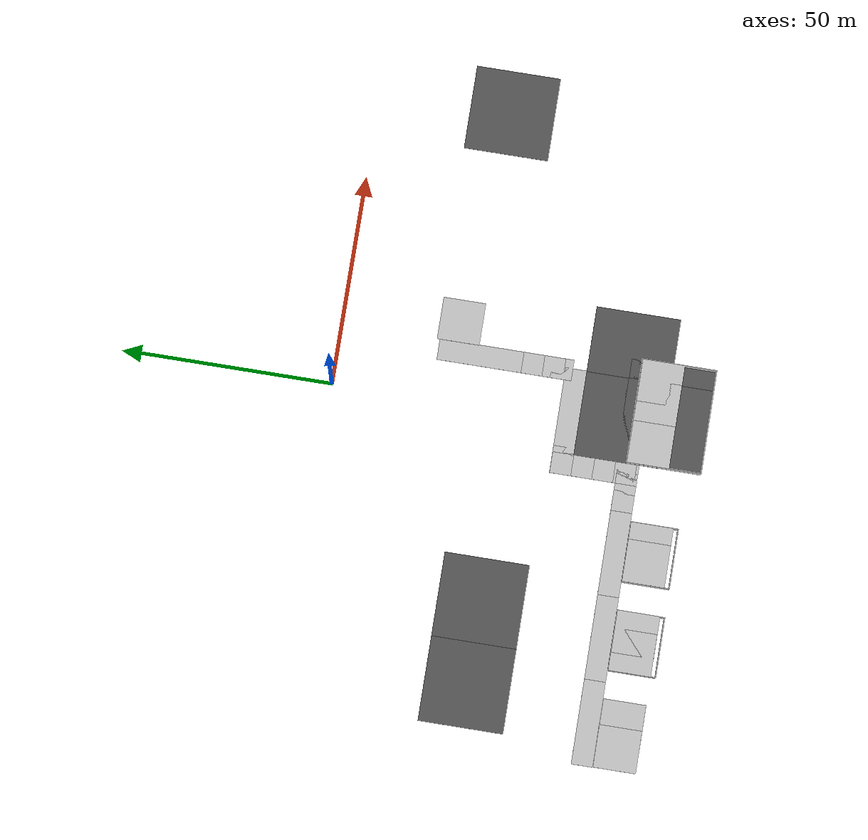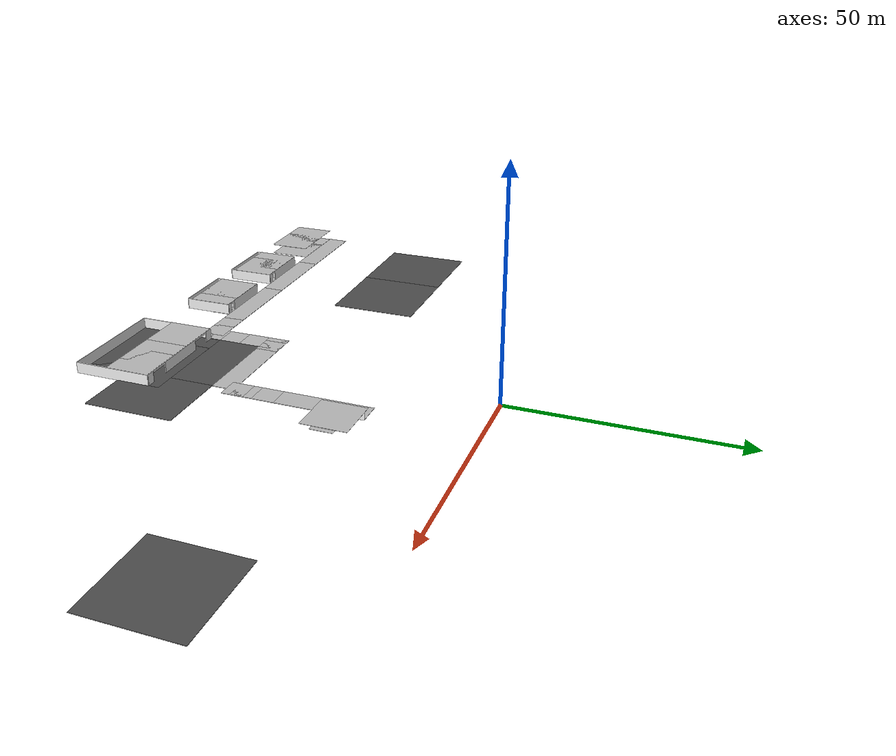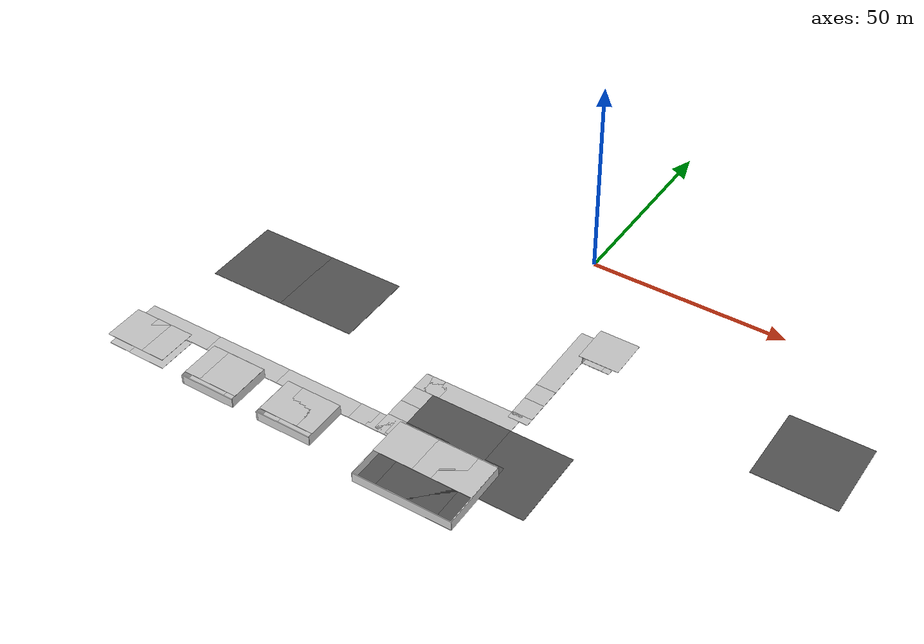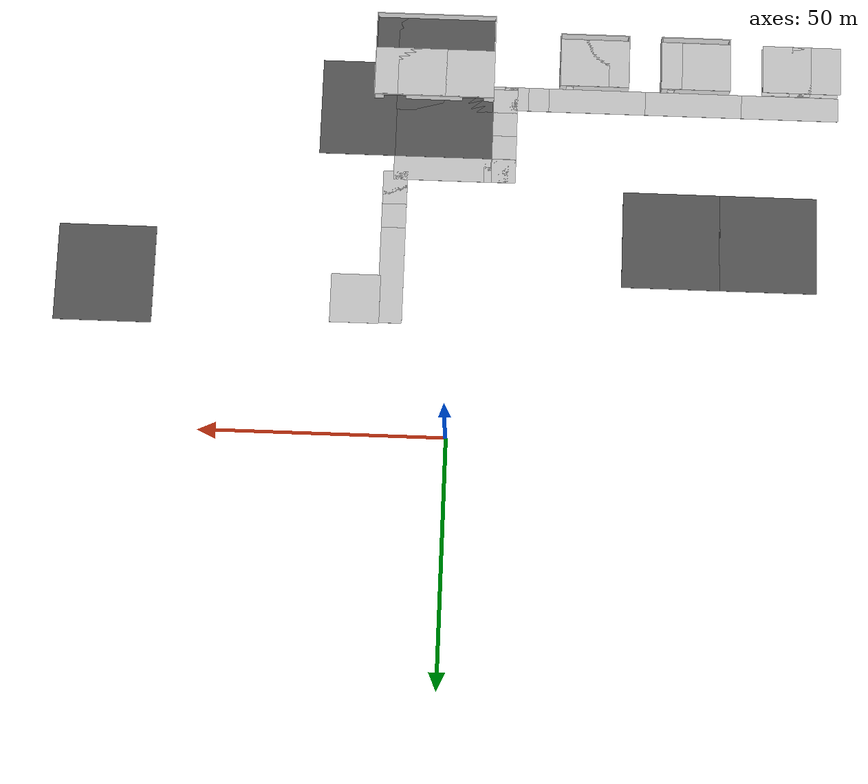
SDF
<sdf version="1.6">
 <world name="default">
  <model name="mainoffice">
   <pose>42.7555 15.4488 0 0 -0 0</pose>
   <link name="Wall_31">
    <collision name="Wall_31_Collision">
     <geometry><box><size>8.75 0.15 2.5</size></box></geometry>
     <pose>0 0 1.25 0 -0 0</pose>
    </collision>
    <visual name="Wall_31_Visual">
     <pose>0 0 1.25 0 -0 0</pose>
     <geometry><box><size>8.75 0.15 2.5</size></box></geometry>
     <material>
      <script>
       <uri>model://office_env/materials/scripts</uri>
       <uri>model://office_env/materials/textures</uri>
       <name>wall</name>
      </script>
      <ambient>1 1 1 1</ambient>
     </material>
    </visual>
    <pose>-27.8491 -43.025 0 0 -0 1.5708</pose>
   </link>
   <static>1</static>
  </model>
  <model name="office3">
   <pose>-49.0179 -79.6403 0 0 -0 0</pose>
   <link name="Wall_226">
    <collision name="Wall_226_Collision">
     <geometry><box><size>11.25 0.15 2.5</size></box></geometry>
     <pose>0 0 1.25 0 -0 0</pose>
    </collision>
    <visual name="Wall_226_Visual">
     <pose>0 0 1.25 0 -0 0</pose>
     <geometry><box><size>11.25 0.15 2.5</size></box></geometry>
     <material>
      <script>
       <uri>model://office_env/materials/scripts</uri>
       <uri>model://office_env/materials/textures</uri>
       <name>wall</name>
      </script>
      <ambient>1 1 1 1</ambient>
     </material>
    </visual>
    <pose>-7.05 0 0 0 -0 1.5708</pose>
   </link>
   <link name="Wall_228">
    <pose>0 5.55 0 0 -0 0</pose>
    <visual name="Wall_228_Visual_0">
     <pose>-1.41788 0 1.25 0 -0 0</pose>
     <geometry><box><size>11.4142 0.15 2.5</size></box></geometry>
     <material>
      <script>
       <uri>model://office_env/materials/scripts</uri>
       <uri>model://office_env/materials/textures</uri>
       <name>wall</name>
      </script>
      <ambient>1 1 1 1</ambient>
     </material>
    </visual>
    <collision name="Wall_228_Collision_0">
     <geometry><box><size>11.4142 0.15 2.5</size></box></geometry>
     <pose>-1.41788 0 1.25 0 -0 0</pose>
    </collision>
    <visual name="Wall_228_Visual_1">
     <pose>6.45712 0 1.25 0 -0 0</pose>
     <geometry><box><size>1.33575 0.15 2.5</size></box></geometry>
     <material>
      <script>
       <uri>model://office_env/materials/scripts</uri>
       <uri>model://office_env/materials/textures</uri>
       <name>wall</name>
      </script>
      <ambient>1 1 1 1</ambient>
     </material>
    </visual>
    <collision name="Wall_228_Collision_1">
     <geometry><box><size>1.33575 0.15 2.5</size></box></geometry>
     <pose>6.45712 0 1.25 0 -0 0</pose>
    </collision>
    <visual name="Wall_228_Visual_2">
     <pose>5.03925 0 2.25 0 -0 0</pose>
     <geometry><box><size>1.5 0.15 0.5</size></box></geometry>
     <material>
      <script>
       <uri>model://office_env/materials/scripts</uri>
       <uri>model://office_env/materials/textures</uri>
       <name>wall</name>
      </script>
      <ambient>1 1 1 1</ambient>
     </material>
    </visual>
    <collision name="Wall_228_Collision_2">
     <geometry><box><size>1.5 0.15 0.5</size></box></geometry>
     <pose>5.03925 0 2.25 0 -0 0</pose>
    </collision>
   </link>
   <link name="Wall_229">
    <collision name="Wall_229_Collision">
     <geometry><box><size>11.25 0.15 2.5</size></box></geometry>
     <pose>0 0 1.25 0 -0 0</pose>
    </collision>
    <visual name="Wall_229_Visual">
     <pose>0 0 1.25 0 -0 0</pose>
     <geometry><box><size>11.25 0.15 2.5</size></box></geometry>
     <material>
      <script>
       <uri>model://office_env/materials/scripts</uri>
       <uri>model://office_env/materials/textures</uri>
       <name>wall</name>
      </script>
      <ambient>1 1 1 1</ambient>
     </material>
    </visual>
    <pose>7.05 0 0 0 0 -1.5708</pose>
   </link>
   <link name="Wall_230">
    <collision name="Wall_230_Collision">
     <geometry><box><size>14 0.15 2.5</size></box></geometry>
     <pose>0 0 1.25 0 -0 0</pose>
    </collision>
    <visual name="Wall_230_Visual">
     <pose>0 0 1.25 0 -0 0</pose>
     <geometry><box><size>14 0.15 2.5</size></box></geometry>
     <material>
      <script>
       <uri>model://office_env/materials/scripts</uri>
       <uri>model://office_env/materials/textures</uri>
       <name>wall</name>
      </script>
      <ambient>1 1 1 1</ambient>
     </material>
    </visual>
    <pose>0.125 -5.55 0 0 -0 3.14159</pose>
   </link>
   <link name="Wall_231">
    <collision name="Wall_231_Collision">
     <geometry><box><size>0.4 0.15 2.5</size></box></geometry>
     <pose>0 0 1.25 0 -0 0</pose>
    </collision>
    <visual name="Wall_231_Visual">
     <pose>0 0 1.25 0 -0 0</pose>
     <geometry><box><size>0.4 0.15 2.5</size></box></geometry>
     <material>
      <script>
       <uri>model://office_env/materials/scripts</uri>
       <uri>model://office_env/materials/textures</uri>
       <name>wall</name>
      </script>
      <ambient>1 1 1 1</ambient>
     </material>
    </visual>
    <pose>-6.925 -5.55 0 0 -0 3.14159</pose>
   </link>
   <link name="Wall_235">
    <pose>2.82004 3.69571 0 0 0 -1.5708</pose>
    <visual name="Wall_235_Visual_0">
     <pose>-1.26863 0 1.25 0 -0 0</pose>
     <geometry><box><size>1.21274 0.15 2.5</size></box></geometry>
     <material>
      <script>
       <uri>model://office_env/materials/scripts</uri>
       <uri>model://office_env/materials/textures</uri>
       <name>wall</name>
      </script>
      <ambient>1 1 1 1</ambient>
     </material>
    </visual>
    <collision name="Wall_235_Collision_0">
     <geometry><box><size>1.21274 0.15 2.5</size></box></geometry>
     <pose>-1.26863 0 1.25 0 -0 0</pose>
    </collision>
    <visual name="Wall_235_Visual_1">
     <pose>1.35637 0 1.25 0 -0 0</pose>
     <geometry><box><size>1.03726 0.15 2.5</size></box></geometry>
     <material>
      <script>
       <uri>model://office_env/materials/scripts</uri>
       <uri>model://office_env/materials/textures</uri>
       <name>wall</name>
      </script>
      <ambient>1 1 1 1</ambient>
     </material>
    </visual>
    <collision name="Wall_235_Collision_1">
     <geometry><box><size>1.03726 0.15 2.5</size></box></geometry>
     <pose>1.35637 0 1.25 0 -0 0</pose>
    </collision>
    <visual name="Wall_235_Visual_2">
     <pose>0.087742 0 2.25 0 -0 0</pose>
     <geometry><box><size>1.5 0.15 0.5</size></box></geometry>
     <material>
      <script>
       <uri>model://office_env/materials/scripts</uri>
       <uri>model://office_env/materials/textures</uri>
       <name>wall</name>
      </script>
      <ambient>1 1 1 1</ambient>
     </material>
    </visual>
    <collision name="Wall_235_Collision_2">
     <geometry><box><size>1.5 0.15 0.5</size></box></geometry>
     <pose>0.087742 0 2.25 0 -0 0</pose>
    </collision>
   </link>
   <link name="Wall_236">
    <collision name="Wall_236_Collision">
     <geometry><box><size>4.25 0.15 2.5</size></box></geometry>
     <pose>0 0 1.25 0 -0 0</pose>
    </collision>
    <visual name="Wall_236_Visual">
     <pose>0 0 1.25 0 -0 0</pose>
     <geometry><box><size>4.25 0.15 2.5</size></box></geometry>
     <material>
      <script>
       <uri>model://office_env/materials/scripts</uri>
       <uri>model://office_env/materials/textures</uri>
       <name>wall</name>
      </script>
      <ambient>1 1 1 1</ambient>
     </material>
    </visual>
    <pose>4.87004 1.89571 0 0 -0 0</pose>
   </link>
   <static>1</static>
  </model>
  <model name="office3_0">
   <pose>-28.0882 -79.6403 0 0 -0 0</pose>
   <link name="Wall_226">
    <collision name="Wall_226_Collision">
     <geometry><box><size>11.25 0.15 2.5</size></box></geometry>
     <pose>0 0 1.25 0 -0 0</pose>
    </collision>
    <visual name="Wall_226_Visual">
     <pose>0 0 1.25 0 -0 0</pose>
     <geometry><box><size>11.25 0.15 2.5</size></box></geometry>
     <material>
      <script>
       <uri>model://office_env/materials/scripts</uri>
       <uri>model://office_env/materials/textures</uri>
       <name>wall</name>
      </script>
      <ambient>1 1 1 1</ambient>
     </material>
    </visual>
    <pose>-7.05 0 0 0 -0 1.5708</pose>
   </link>
   <link name="Wall_228">
    <pose>0 5.55 0 0 -0 0</pose>
    <visual name="Wall_228_Visual_0">
     <pose>-1.41788 0 1.25 0 -0 0</pose>
     <geometry><box><size>11.4142 0.15 2.5</size></box></geometry>
     <material>
      <script>
       <uri>model://office_env/materials/scripts</uri>
       <uri>model://office_env/materials/textures</uri>
       <name>wall</name>
      </script>
      <ambient>1 1 1 1</ambient>
     </material>
    </visual>
    <collision name="Wall_228_Collision_0">
     <geometry><box><size>11.4142 0.15 2.5</size></box></geometry>
     <pose>-1.41788 0 1.25 0 -0 0</pose>
    </collision>
    <visual name="Wall_228_Visual_1">
     <pose>6.45712 0 1.25 0 -0 0</pose>
     <geometry><box><size>1.33575 0.15 2.5</size></box></geometry>
     <material>
      <script>
       <uri>model://office_env/materials/scripts</uri>
       <uri>model://office_env/materials/textures</uri>
       <name>wall</name>
      </script>
      <ambient>1 1 1 1</ambient>
     </material>
    </visual>
    <collision name="Wall_228_Collision_1">
     <geometry><box><size>1.33575 0.15 2.5</size></box></geometry>
     <pose>6.45712 0 1.25 0 -0 0</pose>
    </collision>
    <visual name="Wall_228_Visual_2">
     <pose>5.03925 0 2.25 0 -0 0</pose>
     <geometry><box><size>1.5 0.15 0.5</size></box></geometry>
     <material>
      <script>
       <uri>model://office_env/materials/scripts</uri>
       <uri>model://office_env/materials/textures</uri>
       <name>wall</name>
      </script>
      <ambient>1 1 1 1</ambient>
     </material>
    </visual>
    <collision name="Wall_228_Collision_2">
     <geometry><box><size>1.5 0.15 0.5</size></box></geometry>
     <pose>5.03925 0 2.25 0 -0 0</pose>
    </collision>
   </link>
   <link name="Wall_229">
    <collision name="Wall_229_Collision">
     <geometry><box><size>11.25 0.15 2.5</size></box></geometry>
     <pose>0 0 1.25 0 -0 0</pose>
    </collision>
    <visual name="Wall_229_Visual">
     <pose>0 0 1.25 0 -0 0</pose>
     <geometry><box><size>11.25 0.15 2.5</size></box></geometry>
     <material>
      <script>
       <uri>model://office_env/materials/scripts</uri>
       <uri>model://office_env/materials/textures</uri>
       <name>wall</name>
      </script>
      <ambient>1 1 1 1</ambient>
     </material>
    </visual>
    <pose>7.05 0 0 0 0 -1.5708</pose>
   </link>
   <link name="Wall_230">
    <collision name="Wall_230_Collision">
     <geometry><box><size>14 0.15 2.5</size></box></geometry>
     <pose>0 0 1.25 0 -0 0</pose>
    </collision>
    <visual name="Wall_230_Visual">
     <pose>0 0 1.25 0 -0 0</pose>
     <geometry><box><size>14 0.15 2.5</size></box></geometry>
     <material>
      <script>
       <uri>model://office_env/materials/scripts</uri>
       <uri>model://office_env/materials/textures</uri>
       <name>wall</name>
      </script>
      <ambient>1 1 1 1</ambient>
     </material>
    </visual>
    <pose>0.125 -5.55 0 0 -0 3.14159</pose>
   </link>
   <link name="Wall_231">
    <collision name="Wall_231_Collision">
     <geometry><box><size>0.4 0.15 2.5</size></box></geometry>
     <pose>0 0 1.25 0 -0 0</pose>
    </collision>
    <visual name="Wall_231_Visual">
     <pose>0 0 1.25 0 -0 0</pose>
     <geometry><box><size>0.4 0.15 2.5</size></box></geometry>
     <material>
      <script>
       <uri>model://office_env/materials/scripts</uri>
       <uri>model://office_env/materials/textures</uri>
       <name>wall</name>
      </script>
      <ambient>1 1 1 1</ambient>
     </material>
    </visual>
    <pose>-6.925 -5.55 0 0 -0 3.14159</pose>
   </link>
   <link name="Wall_235">
    <pose>2.82004 3.69571 0 0 0 -1.5708</pose>
    <visual name="Wall_235_Visual_0">
     <pose>-1.26863 0 1.25 0 -0 0</pose>
     <geometry><box><size>1.21274 0.15 2.5</size></box></geometry>
     <material>
      <script>
       <uri>model://office_env/materials/scripts</uri>
       <uri>model://office_env/materials/textures</uri>
       <name>wall</name>
      </script>
      <ambient>1 1 1 1</ambient>
     </material>
    </visual>
    <collision name="Wall_235_Collision_0">
     <geometry><box><size>1.21274 0.15 2.5</size></box></geometry>
     <pose>-1.26863 0 1.25 0 -0 0</pose>
    </collision>
    <visual name="Wall_235_Visual_1">
     <pose>1.35637 0 1.25 0 -0 0</pose>
     <geometry><box><size>1.03726 0.15 2.5</size></box></geometry>
     <material>
      <script>
       <uri>model://office_env/materials/scripts</uri>
       <uri>model://office_env/materials/textures</uri>
       <name>wall</name>
      </script>
      <ambient>1 1 1 1</ambient>
     </material>
    </visual>
    <collision name="Wall_235_Collision_1">
     <geometry><box><size>1.03726 0.15 2.5</size></box></geometry>
     <pose>1.35637 0 1.25 0 -0 0</pose>
    </collision>
    <visual name="Wall_235_Visual_2">
     <pose>0.087742 0 2.25 0 -0 0</pose>
     <geometry><box><size>1.5 0.15 0.5</size></box></geometry>
     <material>
      <script>
       <uri>model://office_env/materials/scripts</uri>
       <uri>model://office_env/materials/textures</uri>
       <name>wall</name>
      </script>
      <ambient>1 1 1 1</ambient>
     </material>
    </visual>
    <collision name="Wall_235_Collision_2">
     <geometry><box><size>1.5 0.15 0.5</size></box></geometry>
     <pose>0.087742 0 2.25 0 -0 0</pose>
    </collision>
   </link>
   <link name="Wall_236">
    <collision name="Wall_236_Collision">
     <geometry><box><size>4.25 0.15 2.5</size></box></geometry>
     <pose>0 0 1.25 0 -0 0</pose>
    </collision>
    <visual name="Wall_236_Visual">
     <pose>0 0 1.25 0 -0 0</pose>
     <geometry><box><size>4.25 0.15 2.5</size></box></geometry>
     <material>
      <script>
       <uri>model://office_env/materials/scripts</uri>
       <uri>model://office_env/materials/textures</uri>
       <name>wall</name>
      </script>
      <ambient>1 1 1 1</ambient>
     </material>
    </visual>
    <pose>4.87004 1.89571 0 0 -0 0</pose>
   </link>
   <static>1</static>
  </model>
  <model name="park_1">
   <pose>5 -79.6403 0 0 -0 0</pose>
   <link name="Wall_10">
    <collision name="Wall_10_Collision">
     <geometry><box><size>24.75 0.15 2.5</size></box></geometry>
     <pose>0 0 1.25 0 -0 0</pose>
    </collision>
    <visual name="Wall_10_Visual">
     <pose>0 0 1.25 0 -0 0</pose>
     <geometry><box><size>24.75 0.15 2.5</size></box></geometry>
     <material>
      <script>
       <uri>model://office_env/materials/scripts</uri>
       <uri>model://office_env/materials/textures</uri>
       <name>wall</name>
      </script>
      <ambient>1 1 1 1</ambient>
     </material>
    </visual>
    <pose>0 -8.8 0 0 -0 0</pose>
   </link>
   <link name="Wall_11">
    <collision name="Wall_11_Collision">
     <geometry><box><size>17.75 0.15 2.5</size></box></geometry>
     <pose>0 0 1.25 0 -0 0</pose>
    </collision>
    <visual name="Wall_11_Visual">
     <pose>0 0 1.25 0 -0 0</pose>
     <geometry><box><size>17.75 0.15 2.5</size></box></geometry>
     <material>
      <script>
       <uri>model://office_env/materials/scripts</uri>
       <uri>model://office_env/materials/textures</uri>
       <name>wall</name>
      </script>
      <ambient>1 1 1 1</ambient>
     </material>
    </visual>
    <pose>12.3 0 0 0 -0 1.5708</pose>
   </link>
   <link name="Wall_12">
    <pose>0 8.8 0 0 -0 3.14159</pose>
    <visual name="Wall_12_Visual_0">
     <pose>-11.3671 0 1.25 0 -0 0</pose>
     <geometry><box><size>2.0158 0.15 2.5</size></box></geometry>
     <material>
      <script>
       <uri>model://office_env/materials/scripts</uri>
       <uri>model://office_env/materials/textures</uri>
       <name>wall</name>
      </script>
      <ambient>1 1 1 1</ambient>
     </material>
    </visual>
    <collision name="Wall_12_Collision_0">
     <geometry><box><size>2.0158 0.15 2.5</size></box></geometry>
     <pose>-11.3671 0 1.25 0 -0 0</pose>
    </collision>
    <visual name="Wall_12_Visual_1">
     <pose>-0.005473 0 1.25 0 -0 0</pose>
     <geometry><box><size>11.7075 0.15 2.5</size></box></geometry>
     <material>
      <script>
       <uri>model://office_env/materials/scripts</uri>
       <uri>model://office_env/materials/textures</uri>
       <name>wall</name>
      </script>
      <ambient>1 1 1 1</ambient>
     </material>
    </visual>
    <collision name="Wall_12_Collision_1">
     <geometry><box><size>11.7075 0.15 2.5</size></box></geometry>
     <pose>-0.005473 0 1.25 0 -0 0</pose>
    </collision>
    <visual name="Wall_12_Visual_2">
     <pose>11.3616 0 1.25 0 -0 0</pose>
     <geometry><box><size>2.02674 0.15 2.5</size></box></geometry>
     <material>
      <script>
       <uri>model://office_env/materials/scripts</uri>
       <uri>model://office_env/materials/textures</uri>
       <name>wall</name>
      </script>
      <ambient>1 1 1 1</ambient>
     </material>
    </visual>
    <collision name="Wall_12_Collision_2">
     <geometry><box><size>2.02674 0.15 2.5</size></box></geometry>
     <pose>11.3616 0 1.25 0 -0 0</pose>
    </collision>
    <visual name="Wall_12_Visual_3">
     <pose>-8.1092 0 2.3 0 -0 0</pose>
     <geometry><box><size>4.5 0.15 0.4</size></box></geometry>
     <material>
      <script>
       <uri>model://office_env/materials/scripts</uri>
       <uri>model://office_env/materials/textures</uri>
       <name>wall</name>
      </script>
      <ambient>1 1 1 1</ambient>
     </material>
    </visual>
    <collision name="Wall_12_Collision_3">
     <geometry><box><size>4.5 0.15 0.4</size></box></geometry>
     <pose>-8.1092 0 2.3 0 -0 0</pose>
    </collision>
    <visual name="Wall_12_Visual_4">
     <pose>8.09826 0 2.3 0 -0 0</pose>
     <geometry><box><size>4.5 0.15 0.4</size></box></geometry>
     <material>
      <script>
       <uri>model://office_env/materials/scripts</uri>
       <uri>model://office_env/materials/textures</uri>
       <name>wall</name>
      </script>
      <ambient>1 1 1 1</ambient>
     </material>
    </visual>
    <collision name="Wall_12_Collision_4">
     <geometry><box><size>4.5 0.15 0.4</size></box></geometry>
     <pose>8.09826 0 2.3 0 -0 0</pose>
    </collision>
   </link>
   <link name="Wall_4">
    <collision name="Wall_4_Collision">
     <geometry><box><size>17.75 0.15 2.5</size></box></geometry>
     <pose>0 0 1.25 0 -0 0</pose>
    </collision>
    <visual name="Wall_4_Visual">
     <pose>0 0 1.25 0 -0 0</pose>
     <geometry><box><size>17.75 0.15 2.5</size></box></geometry>
     <material>
      <script>
       <uri>model://office_env/materials/scripts</uri>
       <uri>model://office_env/materials/textures</uri>
       <name>wall</name>
      </script>
      <ambient>1 1 1 1</ambient>
     </material>
    </visual>
    <pose>-12.3 0 0 0 0 -1.5708</pose>
   </link>
   <static>1</static>
  </model>
  <model name="asphalt_plane_6">
   <static>1</static>
   <link name="link">
    <collision name="collision"><geometry><box><size>20 20 0.1</size></box></geometry></collision>
    <visual name="visual">
     <cast_shadows>0</cast_shadows>
     <geometry><box><size>20 20 0.1</size></box></geometry>
     <material>
      <script>
       <uri>model://asphalt_plane/materials/scripts</uri>
       <uri>model://asphalt_plane/materials/textures</uri>
       <name>vrc/asphalt</name>
      </script>
     </material>
    </visual>
   </link>
   <pose>-64.5489 -42.3307 0 0 -0 0</pose>
  </model>
  <model name="asphalt_plane_13">
   <static>1</static>
   <link name="link">
    <collision name="collision"><geometry><box><size>20 20 0.1</size></box></geometry></collision>
    <visual name="visual">
     <cast_shadows>0</cast_shadows>
     <geometry><box><size>20 20 0.1</size></box></geometry>
     <material>
      <script>
       <uri>model://asphalt_plane/materials/scripts</uri>
       <uri>model://asphalt_plane/materials/textures</uri>
       <name>vrc/asphalt</name>
      </script>
     </material>
    </visual>
   </link>
   <pose>-44.7034 -42.3237 0 0 -0 0</pose>
  </model>
  <model name="asphalt_plane">
   <static>1</static>
   <link name="link">
    <collision name="collision"><geometry><box><size>20 20 0.1</size></box></geometry></collision>
    <visual name="visual">
     <cast_shadows>0</cast_shadows>
     <geometry><box><size>20 20 0.1</size></box></geometry>
     <material>
      <script>
       <uri>model://asphalt_plane/materials/scripts</uri>
       <uri>model://asphalt_plane/materials/textures</uri>
       <name>vrc/asphalt</name>
      </script>
     </material>
    </visual>
   </link>
   <pose>70.7475 -31.5972 0 0 -0 0</pose>
  </model>
  <model name="asphalt_plane_21">
   <static>1</static>
   <link name="link">
    <collision name="collision"><geometry><box><size>20 20 0.1</size></box></geometry></collision>
    <visual name="visual">
     <cast_shadows>0</cast_shadows>
     <geometry><box><size>20 20 0.1</size></box></geometry>
     <material>
      <script>
       <uri>model://asphalt_plane/materials/scripts</uri>
       <uri>model://asphalt_plane/materials/textures</uri>
       <name>vrc/asphalt</name>
      </script>
     </material>
    </visual>
   </link>
   <pose>7.25861 -78.4975 0 0 -0 0</pose>
  </model>
  <model name="asphalt_plane_22">
   <static>1</static>
   <link name="link">
    <collision name="collision"><geometry><box><size>20 20 0.1</size></box></geometry></collision>
    <visual name="visual">
     <cast_shadows>0</cast_shadows>
     <geometry><box><size>20 20 0.1</size></box></geometry>
     <material>
      <script>
       <uri>model://asphalt_plane/materials/scripts</uri>
       <uri>model://asphalt_plane/materials/textures</uri>
       <name>vrc/asphalt</name>
      </script>
     </material>
    </visual>
   </link>
   <pose>2.73538 -78.4496 0 0 -0 0</pose>
  </model>
  <model name="asphalt_plane_23">
   <static>1</static>
   <link name="link">
    <collision name="collision"><geometry><box><size>20 20 0.1</size></box></geometry></collision>
    <visual name="visual">
     <cast_shadows>0</cast_shadows>
     <geometry><box><size>20 20 0.1</size></box></geometry>
     <material>
      <script>
       <uri>model://asphalt_plane/materials/scripts</uri>
       <uri>model://asphalt_plane/materials/textures</uri>
       <name>vrc/asphalt</name>
      </script>
     </material>
    </visual>
   </link>
   <pose>2.60492 -68.4597 0 0 -0 0</pose>
  </model>
  <model name="asphalt_plane_24">
   <static>1</static>
   <link name="link">
    <collision name="collision"><geometry><box><size>20 20 0.1</size></box></geometry></collision>
    <visual name="visual">
     <cast_shadows>0</cast_shadows>
     <geometry><box><size>20 20 0.1</size></box></geometry>
     <material>
      <script>
       <uri>model://asphalt_plane/materials/scripts</uri>
       <uri>model://asphalt_plane/materials/textures</uri>
       <name>vrc/asphalt</name>
      </script>
     </material>
    </visual>
   </link>
   <pose>18.2239 -68.4616 0 0 -0 0</pose>
  </model>
  <model name="Floor_16">
   <link name="main">
    <pose>0 0 0.01 0 -0 0</pose>
    <collision name="main_Collision"><geometry><box><size>10 10 0.05</size></box></geometry></collision>
    <visual name="main_Visual">
     <geometry><box><size>10 10 0.05</size></box></geometry>
     <material>
      <script>
       <uri>model://Floor_small/materials/scripts</uri>
       <uri>model://Floor_small/materials/textures</uri>
       <name>floor</name>
      </script>
     </material>
    </visual>
   </link>
   <static>1</static>
   <pose>-25.9898 -79.0539 0 0 -0 0</pose>
  </model>
  <model name="Floor_18">
   <link name="main">
    <pose>0 0 0.01 0 -0 0</pose>
    <collision name="main_Collision"><geometry><box><size>10 10 0.05</size></box></geometry></collision>
    <visual name="main_Visual">
     <geometry><box><size>10 10 0.05</size></box></geometry>
     <material>
      <script>
       <uri>model://Floor_small/materials/scripts</uri>
       <uri>model://Floor_small/materials/textures</uri>
       <name>floor</name>
      </script>
     </material>
    </visual>
   </link>
   <static>1</static>
   <pose>-30.1417 -79.1069 0 0 -0 0</pose>
  </model>
  <model name="Floor_20">
   <link name="main">
    <pose>0 0 0.01 0 -0 0</pose>
    <collision name="main_Collision"><geometry><box><size>10 10 0.05</size></box></geometry></collision>
    <visual name="main_Visual">
     <geometry><box><size>10 10 0.05</size></box></geometry>
     <material>
      <script>
       <uri>model://Floor_small/materials/scripts</uri>
       <uri>model://Floor_small/materials/textures</uri>
       <name>floor</name>
      </script>
     </material>
    </visual>
   </link>
   <static>1</static>
   <pose>-47.0243 -79.0861 0 0 -0 0</pose>
  </model>
  <model name="Floor_22">
   <link name="main">
    <pose>0 0 0.01 0 -0 0</pose>
    <collision name="main_Collision"><geometry><box><size>10 10 0.05</size></box></geometry></collision>
    <visual name="main_Visual">
     <geometry><box><size>10 10 0.05</size></box></geometry>
     <material>
      <script>
       <uri>model://Floor_small/materials/scripts</uri>
       <uri>model://Floor_small/materials/textures</uri>
       <name>floor</name>
      </script>
     </material>
    </visual>
   </link>
   <static>1</static>
   <pose>-51.0111 -79.0401 0 0 -0 0</pose>
  </model>
  <model name="Floor_24">
   <link name="main">
    <pose>0 0 0.01 0 -0 0</pose>
    <collision name="main_Collision"><geometry><box><size>10 10 0.05</size></box></geometry></collision>
    <visual name="main_Visual">
     <geometry><box><size>10 10 0.05</size></box></geometry>
     <material>
      <script>
       <uri>model://Floor_small/materials/scripts</uri>
       <uri>model://Floor_small/materials/textures</uri>
       <name>floor</name>
      </script>
     </material>
    </visual>
   </link>
   <static>1</static>
   <pose>-73.7245 -79.0769 0 0 -0 0</pose>
  </model>
  <model name="Floor_26">
   <link name="main">
    <pose>0 0 0.01 0 -0 0</pose>
    <collision name="main_Collision"><geometry><box><size>10 10 0.05</size></box></geometry></collision>
    <visual name="main_Visual">
     <geometry><box><size>10 10 0.05</size></box></geometry>
     <material>
      <script>
       <uri>model://Floor_small/materials/scripts</uri>
       <uri>model://Floor_small/materials/textures</uri>
       <name>floor</name>
      </script>
     </material>
    </visual>
   </link>
   <static>1</static>
   <pose>-67.9802 -79.1548 0 0 -0 0</pose>
  </model>
  <model name="Floor_48">
   <link name="main">
    <pose>0 0 0.01 0 -0 0</pose>
    <collision name="main_Collision"><geometry><box><size>5 5 0.05</size></box></geometry></collision>
    <visual name="main_Visual">
     <geometry><box><size>5 5 0.05</size></box></geometry>
     <material>
      <script>
       <uri>model://Floor_verysmall/materials/scripts</uri>
       <uri>model://Floor_verysmall/materials/textures</uri>
       <name>floor</name>
      </script>
     </material>
    </visual>
   </link>
   <static>1</static>
   <pose>19.2288 -29.3542 0 0 -0 0</pose>
  </model>
  <model name="Floor_49">
   <link name="main">
    <pose>0 0 0.01 0 -0 0</pose>
    <collision name="main_Collision"><geometry><box><size>5 5 0.05</size></box></geometry></collision>
    <visual name="main_Visual">
     <geometry><box><size>5 5 0.05</size></box></geometry>
     <material>
      <script>
       <uri>model://Floor_verysmall/materials/scripts</uri>
       <uri>model://Floor_verysmall/materials/textures</uri>
       <name>floor</name>
      </script>
     </material>
    </visual>
   </link>
   <static>1</static>
   <pose>17.312 -29.2833 0 0 -0 0</pose>
  </model>
  <model name="outdoor_plane_clone">
   <static>1</static>
   <link name="link">
    <collision name="collision"><geometry><box><size>5 20 0.1</size></box></geometry></collision>
    <visual name="visual">
     <cast_shadows>0</cast_shadows>
     <geometry><box><size>5 20 0.1</size></box></geometry>
     <material>
      <script>
       <uri>model://outdoor_plane/materials/scripts</uri>
       <uri>model://outdoor_plane/materials/textures</uri>
       <name>outds/Image</name>
      </script>
     </material>
    </visual>
   </link>
   <pose>-48.8451 -71.5216 0 0 -0 1.57079</pose>
  </model>
  <model name="outdoor_plane_clone_clone">
   <static>1</static>
   <link name="link">
    <collision name="collision"><geometry><box><size>5 20 0.1</size></box></geometry></collision>
    <visual name="visual">
     <cast_shadows>0</cast_shadows>
     <geometry><box><size>5 20 0.1</size></box></geometry>
     <material>
      <script>
       <uri>model://outdoor_plane/materials/scripts</uri>
       <uri>model://outdoor_plane/materials/textures</uri>
       <name>outds/Image</name>
      </script>
     </material>
    </visual>
   </link>
   <pose>-28.8608 -71.5211 0 0 -0 1.57079</pose>
  </model>
  <model name="outdoor_plane_0">
   <static>1</static>
   <link name="link">
    <collision name="collision"><geometry><box><size>5 5 0.1</size></box></geometry></collision>
    <visual name="visual">
     <cast_shadows>0</cast_shadows>
     <geometry><box><size>5 5 0.1</size></box></geometry>
     <material>
      <script>
       <uri>model://outdoor_planesmall/materials/scripts</uri>
       <uri>model://outdoor_planesmall/materials/textures</uri>
       <name>outdss/Image</name>
      </script>
     </material>
    </visual>
   </link>
   <pose>-16.5068 -71.5163 0 0 -0 0</pose>
  </model>
  <model name="outdoor_plane_1">
   <static>1</static>
   <link name="link">
    <collision name="collision"><geometry><box><size>5 5 0.1</size></box></geometry></collision>
    <visual name="visual">
     <cast_shadows>0</cast_shadows>
     <geometry><box><size>5 5 0.1</size></box></geometry>
     <material>
      <script>
       <uri>model://outdoor_planesmall/materials/scripts</uri>
       <uri>model://outdoor_planesmall/materials/textures</uri>
       <name>outdss/Image</name>
      </script>
     </material>
    </visual>
   </link>
   <pose>-12.1261 -71.5221 0 0 -0 0</pose>
  </model>
  <model name="outdoor_plane_clone_clone_clone">
   <static>1</static>
   <link name="link">
    <collision name="collision"><geometry><box><size>5 20 0.1</size></box></geometry></collision>
    <visual name="visual">
     <cast_shadows>0</cast_shadows>
     <geometry><box><size>5 20 0.1</size></box></geometry>
     <material>
      <script>
       <uri>model://outdoor_plane/materials/scripts</uri>
       <uri>model://outdoor_plane/materials/textures</uri>
       <name>outds/Image</name>
      </script>
     </material>
    </visual>
   </link>
   <pose>2.74248 -55.9539 0 0 -0 1.57079</pose>
  </model>
  <model name="outdoor_plane_3">
   <static>1</static>
   <link name="link">
    <collision name="collision"><geometry><box><size>5 5 0.1</size></box></geometry></collision>
    <visual name="visual">
     <cast_shadows>0</cast_shadows>
     <geometry><box><size>5 5 0.1</size></box></geometry>
     <material>
      <script>
       <uri>model://outdoor_planesmall/materials/scripts</uri>
       <uri>model://outdoor_planesmall/materials/textures</uri>
       <name>outdss/Image</name>
      </script>
     </material>
    </visual>
   </link>
   <pose>-9.89426 -56.0168 0 0 -0 0</pose>
  </model>
  <model name="outdoor_plane_4">
   <static>1</static>
   <link name="link">
    <collision name="collision"><geometry><box><size>5 5 0.1</size></box></geometry></collision>
    <visual name="visual">
     <cast_shadows>0</cast_shadows>
     <geometry><box><size>5 5 0.1</size></box></geometry>
     <material>
      <script>
       <uri>model://outdoor_planesmall/materials/scripts</uri>
       <uri>model://outdoor_planesmall/materials/textures</uri>
       <name>outdss/Image</name>
      </script>
     </material>
    </visual>
   </link>
   <pose>-9.89523 -65.9605 0 0 -0 0</pose>
  </model>
  <model name="outdoor_plane_5">
   <static>1</static>
   <link name="link">
    <collision name="collision"><geometry><box><size>5 5 0.1</size></box></geometry></collision>
    <visual name="visual">
     <cast_shadows>0</cast_shadows>
     <geometry><box><size>5 5 0.1</size></box></geometry>
     <material>
      <script>
       <uri>model://outdoor_planesmall/materials/scripts</uri>
       <uri>model://outdoor_planesmall/materials/textures</uri>
       <name>outdss/Image</name>
      </script>
     </material>
    </visual>
   </link>
   <pose>-9.89906 -60.9977 0 0 -0 0</pose>
  </model>
  <model name="outdoor_plane_6">
   <static>1</static>
   <link name="link">
    <collision name="collision"><geometry><box><size>5 5 0.1</size></box></geometry></collision>
    <visual name="visual">
     <cast_shadows>0</cast_shadows>
     <geometry><box><size>5 5 0.1</size></box></geometry>
     <material>
      <script>
       <uri>model://outdoor_planesmall/materials/scripts</uri>
       <uri>model://outdoor_planesmall/materials/textures</uri>
       <name>outdss/Image</name>
      </script>
     </material>
    </visual>
   </link>
   <pose>-9.89735 -70.918 0 0 -0 0</pose>
  </model>
  <model name="outdoor_plane_7">
   <static>1</static>
   <link name="link">
    <collision name="collision"><geometry><box><size>5 5 0.1</size></box></geometry></collision>
    <visual name="visual">
     <cast_shadows>0</cast_shadows>
     <geometry><box><size>5 5 0.1</size></box></geometry>
     <material>
      <script>
       <uri>model://outdoor_planesmall/materials/scripts</uri>
       <uri>model://outdoor_planesmall/materials/textures</uri>
       <name>outdss/Image</name>
      </script>
     </material>
    </visual>
   </link>
   <pose>-9.8805 -71.5289 0 0 -0 0</pose>
  </model>
  <model name="outdoor_plane_21">
   <static>1</static>
   <link name="link">
    <collision name="collision"><geometry><box><size>5 20 0.1</size></box></geometry></collision>
    <visual name="visual">
     <cast_shadows>0</cast_shadows>
     <geometry><box><size>5 20 0.1</size></box></geometry>
     <material>
      <script>
       <uri>model://outdoor_plane/materials/scripts</uri>
       <uri>model://outdoor_plane/materials/textures</uri>
       <name>outds/Image</name>
      </script>
     </material>
    </visual>
   </link>
   <pose>12.3123 -33.2125 0 0 -0 0</pose>
  </model>
  <model name="outdoor_plane_22">
   <static>1</static>
   <link name="link">
    <collision name="collision"><geometry><box><size>5 5 0.1</size></box></geometry></collision>
    <visual name="visual">
     <cast_shadows>0</cast_shadows>
     <geometry><box><size>5 5 0.1</size></box></geometry>
     <material>
      <script>
       <uri>model://outdoor_planesmall/materials/scripts</uri>
       <uri>model://outdoor_planesmall/materials/textures</uri>
       <name>outdss/Image</name>
      </script>
     </material>
    </visual>
   </link>
   <pose>12.3093 -45.7103 0 0 -0 0</pose>
  </model>
  <model name="outdoor_plane_23">
   <static>1</static>
   <link name="link">
    <collision name="collision"><geometry><box><size>5 5 0.1</size></box></geometry></collision>
    <visual name="visual">
     <cast_shadows>0</cast_shadows>
     <geometry><box><size>5 5 0.1</size></box></geometry>
     <material>
      <script>
       <uri>model://outdoor_planesmall/materials/scripts</uri>
       <uri>model://outdoor_planesmall/materials/textures</uri>
       <name>outdss/Image</name>
      </script>
     </material>
    </visual>
   </link>
   <pose>12.2996 -50.6831 0 0 -0 0</pose>
  </model>
  <model name="outdoor_plane_24">
   <static>1</static>
   <link name="link">
    <collision name="collision"><geometry><box><size>5 5 0.1</size></box></geometry></collision>
    <visual name="visual">
     <cast_shadows>0</cast_shadows>
     <geometry><box><size>5 5 0.1</size></box></geometry>
     <material>
      <script>
       <uri>model://outdoor_planesmall/materials/scripts</uri>
       <uri>model://outdoor_planesmall/materials/textures</uri>
       <name>outdss/Image</name>
      </script>
     </material>
    </visual>
   </link>
   <pose>12.3029 -52.649 0 0 -0 0</pose>
  </model>
  <model name="Floor_0">
   <link name="main">
    <pose>0 0 0.01 0 -0 0</pose>
    <collision name="main_Collision"><geometry><box><size>5 5 0.05</size></box></geometry></collision>
    <visual name="main_Visual">
     <geometry><box><size>5 5 0.05</size></box></geometry>
     <material>
      <script>
       <uri>model://Floor_verysmall/materials/scripts</uri>
       <uri>model://Floor_verysmall/materials/textures</uri>
       <name>floor</name>
      </script>
     </material>
    </visual>
   </link>
   <static>1</static>
   <pose>-44.5634 -76.0712 0 0 -0 0</pose>
  </model>
  <model name="Floor_1">
   <link name="main">
    <pose>0 0 0.01 0 -0 0</pose>
    <collision name="main_Collision"><geometry><box><size>5 5 0.05</size></box></geometry></collision>
    <visual name="main_Visual">
     <geometry><box><size>5 5 0.05</size></box></geometry>
     <material>
      <script>
       <uri>model://Floor_verysmall/materials/scripts</uri>
       <uri>model://Floor_verysmall/materials/textures</uri>
       <name>floor</name>
      </script>
     </material>
    </visual>
   </link>
   <static>1</static>
   <pose>-23.3933 -75.9933 0 0 -0 0</pose>
  </model>
  <model name="outdoor_plane_clone_clone_0">
   <static>1</static>
   <link name="link">
    <collision name="collision"><geometry><box><size>5 20 0.1</size></box></geometry></collision>
    <visual name="visual">
     <cast_shadows>0</cast_shadows>
     <geometry><box><size>5 20 0.1</size></box></geometry>
     <material>
      <script>
       <uri>model://outdoor_plane/materials/scripts</uri>
       <uri>model://outdoor_plane/materials/textures</uri>
       <name>outds/Image</name>
      </script>
     </material>
    </visual>
   </link>
   <pose>-68.8133 -71.5144 0 0 -0 1.57079</pose>
  </model>
  <model name="Floor_2">
   <link name="main">
    <pose>0 0 0.01 0 -0 0</pose>
    <collision name="main_Collision"><geometry><box><size>5 5 0.05</size></box></geometry></collision>
    <visual name="main_Visual">
     <geometry><box><size>5 5 0.05</size></box></geometry>
     <material>
      <script>
       <uri>model://Floor_verysmall/materials/scripts</uri>
       <uri>model://Floor_verysmall/materials/textures</uri>
       <name>floor</name>
      </script>
     </material>
    </visual>
   </link>
   <static>1</static>
   <pose>-71.0255 -74.8631 0 0 -0 0</pose>
  </model>
  <model name="outdoor_plane">
   <static>1</static>
   <link name="link">
    <collision name="collision"><geometry><box><size>5 5 0.1</size></box></geometry></collision>
    <visual name="visual">
     <cast_shadows>0</cast_shadows>
     <geometry><box><size>5 5 0.1</size></box></geometry>
     <material>
      <script>
       <uri>model://outdoor_planesmall/materials/scripts</uri>
       <uri>model://outdoor_planesmall/materials/textures</uri>
       <name>outdss/Image</name>
      </script>
     </material>
    </visual>
   </link>
   <pose>-8.37357 -55.9664 0 0 -0 0</pose>
  </model>
  <model name="outdoor_plane_2">
   <static>1</static>
   <link name="link">
    <collision name="collision"><geometry><box><size>5 5 0.1</size></box></geometry></collision>
    <visual name="visual">
     <cast_shadows>0</cast_shadows>
     <geometry><box><size>5 5 0.1</size></box></geometry>
     <material>
      <script>
       <uri>model://outdoor_planesmall/materials/scripts</uri>
       <uri>model://outdoor_planesmall/materials/textures</uri>
       <name>outdss/Image</name>
      </script>
     </material>
    </visual>
   </link>
   <pose>-9.89748 -55.9687 0 0 -0 0</pose>
  </model>
  <model name="Floor_3_clone">
   <link name="main">
    <pose>0 0 0.01 0 -0 0</pose>
    <collision name="main_Collision"><geometry><box><size>10 10 0.05</size></box></geometry></collision>
    <visual name="main_Visual">
     <geometry><box><size>10 10 0.05</size></box></geometry>
     <material>
      <script>
       <uri>model://Floor_small/materials/scripts</uri>
       <uri>model://Floor_small/materials/textures</uri>
       <name>floor</name>
      </script>
     </material>
    </visual>
   </link>
   <static>1</static>
   <pose>-67.7786 -79.0088 2.5 0 -0 0</pose>
  </model>
  <model name="Floor_3_clone_0">
   <link name="main">
    <pose>0 0 0.01 0 -0 0</pose>
    <collision name="main_Collision"><geometry><box><size>10 10 0.05</size></box></geometry></collision>
    <visual name="main_Visual">
     <geometry><box><size>10 10 0.05</size></box></geometry>
     <material>
      <script>
       <uri>model://Floor_small/materials/scripts</uri>
       <uri>model://Floor_small/materials/textures</uri>
       <name>floor</name>
      </script>
     </material>
    </visual>
   </link>
   <static>1</static>
   <pose>-73.8431 -78.9977 2.5 0 -0 0</pose>
  </model>
  <model name="Floor_3_clone_3">
   <link name="main">
    <pose>0 0 0.01 0 -0 0</pose>
    <collision name="main_Collision"><geometry><box><size>10 10 0.05</size></box></geometry></collision>
    <visual name="main_Visual">
     <geometry><box><size>10 10 0.05</size></box></geometry>
     <material>
      <script>
       <uri>model://Floor_small/materials/scripts</uri>
       <uri>model://Floor_small/materials/textures</uri>
       <name>floor</name>
      </script>
     </material>
    </visual>
   </link>
   <static>1</static>
   <pose>-46.8814 -79.0746 2.5 0 -0 0</pose>
  </model>
  <model name="Floor_3_clone_4">
   <link name="main">
    <pose>0 0 0.01 0 -0 0</pose>
    <collision name="main_Collision"><geometry><box><size>10 10 0.05</size></box></geometry></collision>
    <visual name="main_Visual">
     <geometry><box><size>10 10 0.05</size></box></geometry>
     <material>
      <script>
       <uri>model://Floor_small/materials/scripts</uri>
       <uri>model://Floor_small/materials/textures</uri>
       <name>floor</name>
      </script>
     </material>
    </visual>
   </link>
   <static>1</static>
   <pose>-51.1264 -79.0339 2.5 0 -0 0</pose>
  </model>
  <model name="Floor_3_clone_7">
   <link name="main">
    <pose>0 0 0.01 0 -0 0</pose>
    <collision name="main_Collision"><geometry><box><size>10 10 0.05</size></box></geometry></collision>
    <visual name="main_Visual">
     <geometry><box><size>10 10 0.05</size></box></geometry>
     <material>
      <script>
       <uri>model://Floor_small/materials/scripts</uri>
       <uri>model://Floor_small/materials/textures</uri>
       <name>floor</name>
      </script>
     </material>
    </visual>
   </link>
   <static>1</static>
   <pose>-30.12 -79.043 2.5 0 -0 0</pose>
  </model>
  <model name="Floor_3_clone_9">
   <link name="main">
    <pose>0 0 0.01 0 -0 0</pose>
    <collision name="main_Collision"><geometry><box><size>10 10 0.05</size></box></geometry></collision>
    <visual name="main_Visual">
     <geometry><box><size>10 10 0.05</size></box></geometry>
     <material>
      <script>
       <uri>model://Floor_small/materials/scripts</uri>
       <uri>model://Floor_small/materials/textures</uri>
       <name>floor</name>
      </script>
     </material>
    </visual>
   </link>
   <static>1</static>
   <pose>-26.0267 -79.0383 2.5 0 -0 0</pose>
  </model>
  <model name="Floor_3_clone_13">
   <link name="main">
    <pose>0 0 0.01 0 -0 0</pose>
    <collision name="main_Collision"><geometry><box><size>10 10 0.05</size></box></geometry></collision>
    <visual name="main_Visual">
     <geometry><box><size>10 10 0.05</size></box></geometry>
     <material>
      <script>
       <uri>model://Floor_small/materials/scripts</uri>
       <uri>model://Floor_small/materials/textures</uri>
       <name>floor</name>
      </script>
     </material>
    </visual>
   </link>
   <static>1</static>
   <pose>7.54245 -75.9178 2.5 0 -0 0</pose>
  </model>
  <model name="Floor_3_clone_15">
   <link name="main">
    <pose>0 0 0.01 0 -0 0</pose>
    <collision name="main_Collision"><geometry><box><size>10 10 0.05</size></box></geometry></collision>
    <visual name="main_Visual">
     <geometry><box><size>10 10 0.05</size></box></geometry>
     <material>
      <script>
       <uri>model://Floor_small/materials/scripts</uri>
       <uri>model://Floor_small/materials/textures</uri>
       <name>floor</name>
      </script>
     </material>
    </visual>
   </link>
   <static>1</static>
   <pose>12.2996 -75.9411 2.5 0 -0 0</pose>
  </model>
  <model name="Floor_3_clone_10">
   <link name="main">
    <pose>0 0 0.01 0 -0 0</pose>
    <collision name="main_Collision"><geometry><box><size>10 10 0.05</size></box></geometry></collision>
    <visual name="main_Visual">
     <geometry><box><size>10 10 0.05</size></box></geometry>
     <material>
      <script>
       <uri>model://Floor_small/materials/scripts</uri>
       <uri>model://Floor_small/materials/textures</uri>
       <name>floor</name>
      </script>
     </material>
    </visual>
   </link>
   <static>1</static>
   <pose>-2.36778 -75.9027 2.5 0 -0 0</pose>
  </model>
  <model name="Floor_3_clone_18">
   <link name="main">
    <pose>0 0 0.01 0 -0 0</pose>
    <collision name="main_Collision"><geometry><box><size>10 10 0.05</size></box></geometry></collision>
    <visual name="main_Visual">
     <geometry><box><size>10 10 0.05</size></box></geometry>
     <material>
      <script>
       <uri>model://Floor_small/materials/scripts</uri>
       <uri>model://Floor_small/materials/textures</uri>
       <name>floor</name>
      </script>
     </material>
    </visual>
   </link>
   <static>1</static>
   <pose>19.3286 -27.5716 2.5 0 -0 0</pose>
  </model>
 </world>
</sdf>
